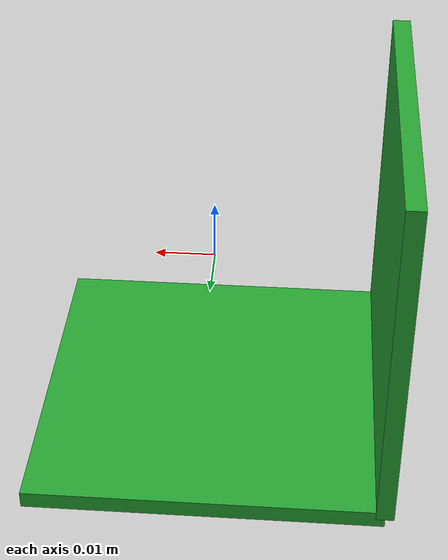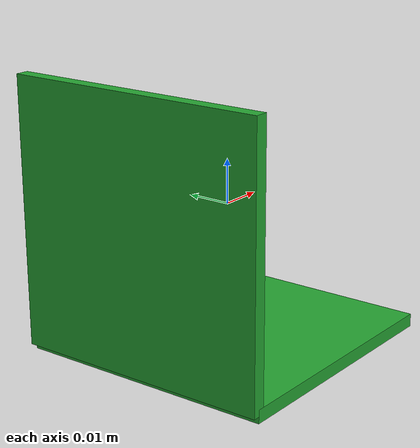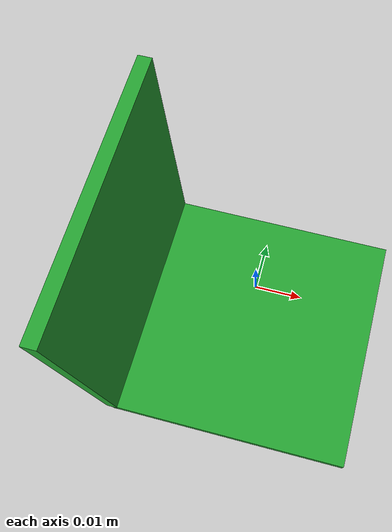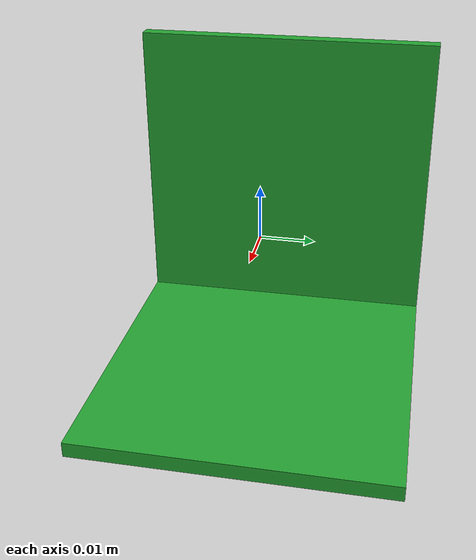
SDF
<?xml version="1.0" ?>
<sdf version='1.4'>
  <model name="thin_cube">
      <static>0</static>
      <link name='link'>
        <inertial>
          <mass>0.25</mass>
          <inertia>
            <ixx>0.001</ixx>
            <ixy>0.000000</ixy>
            <ixz>0.000000</ixz>
            <iyy>0.001</iyy>
            <iyz>0.000000</iyz>
            <izz>0.001</izz>
          </inertia>
        </inertial>
        <collision name='collision1'>
          <pose>-0.035 0 0 0 0 0</pose>
          <geometry>
            <box>
              <size>0.003 0.070 0.070</size>
            </box>
          </geometry>
          <surface>
            <friction>
              <ode>
                <mu>30.0</mu>
                <mu2>30.0</mu2>
              </ode>
            </friction>
            <contact>
              <ode>
                <kp>1000000.0</kp>
                <kd>100.0</kd>
                <max_vel>1.0</max_vel>
                <min_depth>0.002</min_depth>
              </ode>
            </contact>
          </surface>
        </collision>
        <collision name='collision2'>
          <pose>0 0 -0.035 0 0 0</pose>
          <geometry>
            <box>
              <size>0.070 0.070 0.003</size>
            </box>
          </geometry>
          <surface>
            <friction>
              <ode>
                <mu>30.0</mu>
                <mu2>30.0</mu2>
              </ode>
            </friction>
            <contact>
              <ode>
                <kp>1000000.0</kp>
                <kd>100.0</kd>
                <max_vel>1.0</max_vel>
                <min_depth>0.002</min_depth>
              </ode>
            </contact>
          </surface>
        </collision>
        <visual name='visual1'>
          <pose>-0.030 0 0 0 0 0</pose>
          <geometry>
            <box>
              <size>0.003 0.060 0.060</size>
            </box>
          </geometry>
          <material>
            <script>
              <uri>file://media/materials/scripts/gazebo.material</uri>
              <name>Gazebo/Green</name>
            </script>
          </material>
        </visual>
        <visual name='visual2'>
          <pose>0 0 -0.030 0 0 0</pose>
          <geometry>
            <box>
              <size>0.060 0.060 0.003</size>
            </box>
          </geometry>
          <material>
            <script>
              <uri>file://media/materials/scripts/gazebo.material</uri>
              <name>Gazebo/Green</name>
            </script>
          </material>
        </visual>
        <velocity_decay>
          <linear>0.000000</linear>
          <angular>0.000000</angular>
        </velocity_decay>
        <self_collide>0</self_collide>
        <kinematic>0</kinematic>
        <gravity>1</gravity>
      </link>
  </model>
</sdf>
